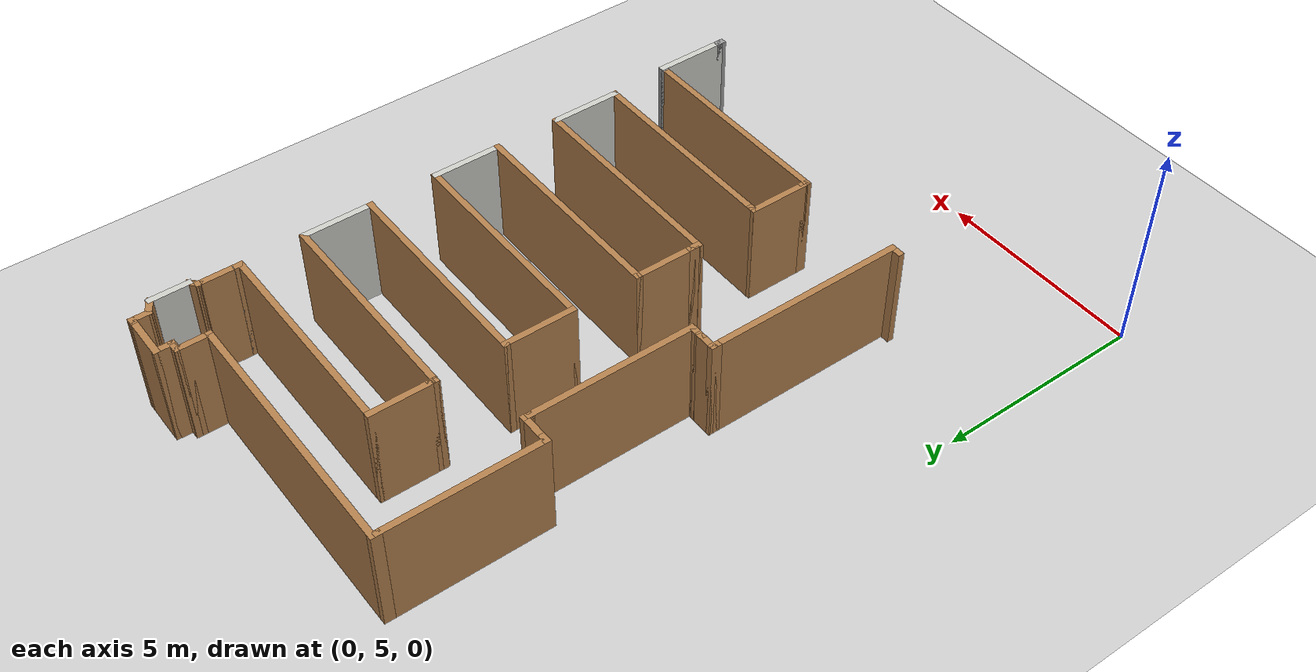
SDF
<sdf version="1.6">
 <world name="default">
  <model name="ground_plane">
   <static>1</static>
   <link name="link">
    <collision name="collision">
     <geometry><plane><normal>0 0 1</normal><size>100 100</size></plane></geometry>
     <surface>
      <contact><collide_bitmask>65535</collide_bitmask></contact>
      <friction><ode><mu>100</mu><mu2>50</mu2></ode></friction>
     </surface>
    </collision>
    <visual name="visual">
     <cast_shadows>0</cast_shadows>
     <geometry><plane><normal>0 0 1</normal><size>100 100</size></plane></geometry>
     <material>
      <script><uri>file://media/materials/scripts/gazebo.material</uri><name>Gazebo/Grey</name></script>
     </material>
    </visual>
   </link>
  </model>
  <model name="ecst_v3">
   <pose>3.45571 9.45141 0 0 0 -1.5708</pose>
   <link name="Wall_100">
    <collision name="Wall_100_Collision">
     <geometry><box><size>5 0.15 2.5</size></box></geometry>
     <pose>0 0 1.25 0 -0 0</pose>
    </collision>
    <visual name="Wall_100_Visual">
     <pose>0 0 1.25 0 -0 0</pose>
     <geometry><box><size>5 0.15 2.5</size></box></geometry>
     <material>
      <script><uri>file://media/materials/scripts/gazebo.material</uri><name>Gazebo/Wood</name></script>
      <ambient>1 1 1 1</ambient>
     </material>
     <meta><layer>0</layer></meta>
    </visual>
    <pose>-1.12064 4.85351 0 0 -0 -1.5708</pose>
   </link>
   <link name="Wall_101">
    <collision name="Wall_101_Collision">
     <geometry><box><size>0.25 0.15 2.5</size></box></geometry>
     <pose>0 0 1.25 0 -0 0</pose>
    </collision>
    <visual name="Wall_101_Visual">
     <pose>0 0 1.25 0 -0 0</pose>
     <geometry><box><size>0.25 0.15 2.5</size></box></geometry>
     <material>
      <script><uri>file://media/materials/scripts/gazebo.material</uri><name>Gazebo/Wood</name></script>
      <ambient>1 1 1 1</ambient>
     </material>
     <meta><layer>0</layer></meta>
    </visual>
    <pose>-1.12064 2.37851 0 0 -0 -1.5708</pose>
   </link>
   <link name="Wall_102">
    <collision name="Wall_102_Collision">
     <geometry><box><size>1.5 0.15 2.5</size></box></geometry>
     <pose>0 0 1.25 0 -0 0</pose>
    </collision>
    <visual name="Wall_102_Visual">
     <pose>0 0 1.25 0 -0 0</pose>
     <geometry><box><size>1.5 0.15 2.5</size></box></geometry>
     <material>
      <script><uri>file://media/materials/scripts/gazebo.material</uri><name>Gazebo/Wood</name></script>
      <ambient>1 1 1 1</ambient>
     </material>
     <meta><layer>0</layer></meta>
    </visual>
    <pose>-0.445642 2.32851 0 0 -0 0</pose>
   </link>
   <link name="Wall_103">
    <collision name="Wall_103_Collision">
     <geometry><box><size>0.25 0.15 2.5</size></box></geometry>
     <pose>0 0 1.25 0 -0 0</pose>
    </collision>
    <visual name="Wall_103_Visual">
     <pose>0 0 1.25 0 -0 0</pose>
     <geometry><box><size>0.25 0.15 2.5</size></box></geometry>
     <material>
      <script><uri>file://media/materials/scripts/gazebo.material</uri><name>Gazebo/Wood</name></script>
      <ambient>1 1 1 1</ambient>
     </material>
     <meta><layer>0</layer></meta>
    </visual>
    <pose>0.279358 2.32851 0 0 -0 0</pose>
   </link>
   <link name="Wall_104">
    <collision name="Wall_104_Collision">
     <geometry><box><size>5 0.15 2.5</size></box></geometry>
     <pose>0 0 1.25 0 -0 0</pose>
    </collision>
    <visual name="Wall_104_Visual">
     <pose>0 0 1.25 0 -0 0</pose>
     <geometry><box><size>5 0.15 2.5</size></box></geometry>
     <material>
      <script><uri>file://media/materials/scripts/gazebo.material</uri><name>Gazebo/Wood</name></script>
      <ambient>1 1 1 1</ambient>
     </material>
     <meta><layer>0</layer></meta>
    </visual>
    <pose>0.329358 4.75351 0 0 -0 1.5708</pose>
   </link>
   <link name="Wall_105">
    <collision name="Wall_105_Collision">
     <geometry><box><size>0.25 0.15 2.5</size></box></geometry>
     <pose>0 0 1.25 0 -0 0</pose>
    </collision>
    <visual name="Wall_105_Visual">
     <pose>0 0 1.25 0 -0 0</pose>
     <geometry><box><size>0.25 0.15 2.5</size></box></geometry>
     <material>
      <script><uri>file://media/materials/scripts/gazebo.material</uri><name>Gazebo/Grey</name></script>
      <ambient>1 1 1 1</ambient>
     </material>
     <meta><layer>0</layer></meta>
    </visual>
    <pose>0.329358 7.22851 0 0 -0 1.5708</pose>
   </link>
   <link name="Wall_106">
    <collision name="Wall_106_Collision">
     <geometry><box><size>0.25 0.15 2.5</size></box></geometry>
     <pose>0 0 1.25 0 -0 0</pose>
    </collision>
    <visual name="Wall_106_Visual">
     <pose>0 0 1.25 0 -0 0</pose>
     <geometry><box><size>0.25 0.15 2.5</size></box></geometry>
     <material>
      <script><uri>file://media/materials/scripts/gazebo.material</uri><name>Gazebo/Grey</name></script>
      <ambient>1 1 1 1</ambient>
     </material>
     <meta><layer>0</layer></meta>
    </visual>
    <pose>0.329358 7.32851 0 0 -0 1.5708</pose>
   </link>
   <link name="Wall_107">
    <collision name="Wall_107_Collision">
     <geometry><box><size>1.75 0.15 2.5</size></box></geometry>
     <pose>0 0 1.25 0 -0 0</pose>
    </collision>
    <visual name="Wall_107_Visual">
     <pose>0 0 1.25 0 -0 0</pose>
     <geometry><box><size>1.75 0.15 2.5</size></box></geometry>
     <material>
      <script><uri>file://media/materials/scripts/gazebo.material</uri><name>Gazebo/CeilingTiled</name></script>
      <ambient>1 1 1 1</ambient>
     </material>
     <meta><layer>0</layer></meta>
    </visual>
    <pose>1.12936 7.37851 0 0 -0 0</pose>
   </link>
   <link name="Wall_108">
    <collision name="Wall_108_Collision">
     <geometry><box><size>0.15 0.15 2.5</size></box></geometry>
     <pose>0 0 1.25 0 -0 0</pose>
    </collision>
    <visual name="Wall_108_Visual">
     <pose>0 0 1.25 0 -0 0</pose>
     <geometry><box><size>0.15 0.15 2.5</size></box></geometry>
     <material>
      <script><uri>file://media/materials/scripts/gazebo.material</uri><name>Gazebo/Grey</name></script>
      <ambient>1 1 1 1</ambient>
     </material>
     <meta><layer>0</layer></meta>
    </visual>
    <pose>1.92936 7.37851 0 0 -0 0</pose>
   </link>
   <link name="Wall_109">
    <collision name="Wall_109_Collision">
     <geometry><box><size>0.25 0.15 2.5</size></box></geometry>
     <pose>0 0 1.25 0 -0 0</pose>
    </collision>
    <visual name="Wall_109_Visual">
     <pose>0 0 1.25 0 -0 0</pose>
     <geometry><box><size>0.25 0.15 2.5</size></box></geometry>
     <material>
      <script><uri>file://media/materials/scripts/gazebo.material</uri><name>Gazebo/Grey</name></script>
      <ambient>1 1 1 1</ambient>
     </material>
     <meta><layer>0</layer></meta>
    </visual>
    <pose>1.97936 7.37851 0 0 -0 0</pose>
   </link>
   <link name="Wall_50">
    <collision name="Wall_50_Collision">
     <geometry><box><size>0.25 0.15 2.5</size></box></geometry>
     <pose>0 0 1.25 0 -0 0</pose>
    </collision>
    <visual name="Wall_50_Visual">
     <pose>0 0 1.25 0 -0 0</pose>
     <geometry><box><size>0.25 0.15 2.5</size></box></geometry>
     <material>
      <script><uri>file://media/materials/scripts/gazebo.material</uri><name>Gazebo/Wood</name></script>
      <ambient>1 1 1 1</ambient>
     </material>
     <meta><layer>0</layer></meta>
    </visual>
    <pose>0.412937 -0.433174 0 0 -0 1.5708</pose>
   </link>
   <link name="Wall_51">
    <collision name="Wall_51_Collision">
     <geometry><box><size>0.25 0.15 2.5</size></box></geometry>
     <pose>0 0 1.25 0 -0 0</pose>
    </collision>
    <visual name="Wall_51_Visual">
     <pose>0 0 1.25 0 -0 0</pose>
     <geometry><box><size>0.25 0.15 2.5</size></box></geometry>
     <material>
      <script><uri>file://media/materials/scripts/gazebo.material</uri><name>Gazebo/Wood</name></script>
      <ambient>1 1 1 1</ambient>
     </material>
     <meta><layer>0</layer></meta>
    </visual>
    <pose>0.412937 -0.333174 0 0 -0 1.5708</pose>
   </link>
   <link name="Wall_52">
    <collision name="Wall_52_Collision">
     <geometry><box><size>4.75 0.15 2.5</size></box></geometry>
     <pose>0 0 1.25 0 -0 0</pose>
    </collision>
    <visual name="Wall_52_Visual">
     <pose>0 0 1.25 0 -0 0</pose>
     <geometry><box><size>4.75 0.15 2.5</size></box></geometry>
     <material>
      <script><uri>file://media/materials/scripts/gazebo.material</uri><name>Gazebo/Wood</name></script>
      <ambient>1 1 1 1</ambient>
     </material>
     <meta><layer>0</layer></meta>
    </visual>
    <pose>-1.88706 -0.283174 0 0 -0 3.14159</pose>
   </link>
   <link name="Wall_53">
    <collision name="Wall_53_Collision">
     <geometry><box><size>0.15 0.15 2.5</size></box></geometry>
     <pose>0 0 1.25 0 -0 0</pose>
    </collision>
    <visual name="Wall_53_Visual">
     <pose>0 0 1.25 0 -0 0</pose>
     <geometry><box><size>0.15 0.15 2.5</size></box></geometry>
     <material>
      <script><uri>file://media/materials/scripts/gazebo.material</uri><name>Gazebo/Wood</name></script>
      <ambient>1 1 1 1</ambient>
     </material>
     <meta><layer>0</layer></meta>
    </visual>
    <pose>-4.18706 -0.283174 0 0 -0 0</pose>
   </link>
   <link name="Wall_54">
    <collision name="Wall_54_Collision">
     <geometry><box><size>0.25 0.15 2.5</size></box></geometry>
     <pose>0 0 1.25 0 -0 0</pose>
    </collision>
    <visual name="Wall_54_Visual">
     <pose>0 0 1.25 0 -0 0</pose>
     <geometry><box><size>0.25 0.15 2.5</size></box></geometry>
     <material>
      <script><uri>file://media/materials/scripts/gazebo.material</uri><name>Gazebo/Wood</name></script>
      <ambient>1 1 1 1</ambient>
     </material>
     <meta><layer>0</layer></meta>
    </visual>
    <pose>-4.23706 -0.283174 0 0 -0 3.14159</pose>
   </link>
   <link name="Wall_55">
    <collision name="Wall_55_Collision">
     <geometry><box><size>0.5 0.15 2.5</size></box></geometry>
     <pose>0 0 1.25 0 -0 0</pose>
    </collision>
    <visual name="Wall_55_Visual">
     <pose>0 0 1.25 0 -0 0</pose>
     <geometry><box><size>0.5 0.15 2.5</size></box></geometry>
     <material>
      <script><uri>file://media/materials/scripts/gazebo.material</uri><name>Gazebo/Wood</name></script>
      <ambient>1 1 1 1</ambient>
     </material>
     <meta><layer>0</layer></meta>
    </visual>
    <pose>-4.28706 -0.108173 0 0 -0 1.5708</pose>
   </link>
   <link name="Wall_56">
    <collision name="Wall_56_Collision">
     <geometry><box><size>0.25 0.15 2.5</size></box></geometry>
     <pose>0 0 1.25 0 -0 0</pose>
    </collision>
    <visual name="Wall_56_Visual">
     <pose>0 0 1.25 0 -0 0</pose>
     <geometry><box><size>0.25 0.15 2.5</size></box></geometry>
     <material>
      <script><uri>file://media/materials/scripts/gazebo.material</uri><name>Gazebo/Wood</name></script>
      <ambient>1 1 1 1</ambient>
     </material>
     <meta><layer>0</layer></meta>
    </visual>
    <pose>-4.28706 0.116827 0 0 -0 1.5708</pose>
   </link>
   <link name="Wall_57">
    <collision name="Wall_57_Collision">
     <geometry><box><size>0.25 0.15 2.5</size></box></geometry>
     <pose>0 0 1.25 0 -0 0</pose>
    </collision>
    <visual name="Wall_57_Visual">
     <pose>0 0 1.25 0 -0 0</pose>
     <geometry><box><size>0.25 0.15 2.5</size></box></geometry>
     <material>
      <script><uri>file://media/materials/scripts/gazebo.material</uri><name>Gazebo/Wood</name></script>
      <ambient>1 1 1 1</ambient>
     </material>
     <meta><layer>0</layer></meta>
    </visual>
    <pose>-4.28706 0.216826 0 0 -0 1.5708</pose>
   </link>
   <link name="Wall_58">
    <collision name="Wall_58_Collision">
     <geometry><box><size>0.25 0.15 2.5</size></box></geometry>
     <pose>0 0 1.25 0 -0 0</pose>
    </collision>
    <visual name="Wall_58_Visual">
     <pose>0 0 1.25 0 -0 0</pose>
     <geometry><box><size>0.25 0.15 2.5</size></box></geometry>
     <material>
      <script><uri>file://media/materials/scripts/gazebo.material</uri><name>Gazebo/Wood</name></script>
      <ambient>1 1 1 1</ambient>
     </material>
     <meta><layer>0</layer></meta>
    </visual>
    <pose>-4.28706 0.316826 0 0 -0 1.5708</pose>
   </link>
   <link name="Wall_59">
    <collision name="Wall_59_Collision">
     <geometry><box><size>4 0.15 2.5</size></box></geometry>
     <pose>0 0 1.25 0 -0 0</pose>
    </collision>
    <visual name="Wall_59_Visual">
     <pose>0 0 1.25 0 -0 0</pose>
     <geometry><box><size>4 0.15 2.5</size></box></geometry>
     <material>
      <script><uri>file://media/materials/scripts/gazebo.material</uri><name>Gazebo/Wood</name></script>
      <ambient>1 1 1 1</ambient>
     </material>
     <meta><layer>0</layer></meta>
    </visual>
    <pose>-6.21206 0.366827 0 0 -0 3.14159</pose>
   </link>
   <link name="Wall_60">
    <collision name="Wall_60_Collision">
     <geometry><box><size>0.15 0.15 2.5</size></box></geometry>
     <pose>0 0 1.25 0 -0 0</pose>
    </collision>
    <visual name="Wall_60_Visual">
     <pose>0 0 1.25 0 -0 0</pose>
     <geometry><box><size>0.15 0.15 2.5</size></box></geometry>
     <material>
      <script><uri>file://media/materials/scripts/gazebo.material</uri><name>Gazebo/Wood</name></script>
      <ambient>1 1 1 1</ambient>
     </material>
     <meta><layer>0</layer></meta>
    </visual>
    <pose>-8.13706 0.366827 0 0 -0 0</pose>
   </link>
   <link name="Wall_61">
    <collision name="Wall_61_Collision">
     <geometry><box><size>0.25 0.15 2.5</size></box></geometry>
     <pose>0 0 1.25 0 -0 0</pose>
    </collision>
    <visual name="Wall_61_Visual">
     <pose>0 0 1.25 0 -0 0</pose>
     <geometry><box><size>0.25 0.15 2.5</size></box></geometry>
     <material>
      <script><uri>file://media/materials/scripts/gazebo.material</uri><name>Gazebo/Wood</name></script>
      <ambient>1 1 1 1</ambient>
     </material>
     <meta><layer>0</layer></meta>
    </visual>
    <pose>-8.18706 0.366827 0 0 -0 3.14159</pose>
   </link>
   <link name="Wall_62">
    <collision name="Wall_62_Collision">
     <geometry><box><size>0.75 0.15 2.5</size></box></geometry>
     <pose>0 0 1.25 0 -0 0</pose>
    </collision>
    <visual name="Wall_62_Visual">
     <pose>0 0 1.25 0 -0 0</pose>
     <geometry><box><size>0.75 0.15 2.5</size></box></geometry>
     <material>
      <script><uri>file://media/materials/scripts/gazebo.material</uri><name>Gazebo/Wood</name></script>
      <ambient>1 1 1 1</ambient>
     </material>
     <meta><layer>0</layer></meta>
    </visual>
    <pose>-8.23706 0.066826 0 0 -0 -1.5708</pose>
   </link>
   <link name="Wall_63">
    <collision name="Wall_63_Collision">
     <geometry><box><size>0.25 0.15 2.5</size></box></geometry>
     <pose>0 0 1.25 0 -0 0</pose>
    </collision>
    <visual name="Wall_63_Visual">
     <pose>0 0 1.25 0 -0 0</pose>
     <geometry><box><size>0.25 0.15 2.5</size></box></geometry>
     <material>
      <script><uri>file://media/materials/scripts/gazebo.material</uri><name>Gazebo/Wood</name></script>
      <ambient>1 1 1 1</ambient>
     </material>
     <meta><layer>0</layer></meta>
    </visual>
    <pose>-8.23706 -0.283174 0 0 -0 -1.5708</pose>
   </link>
   <link name="Wall_64">
    <collision name="Wall_64_Collision">
     <geometry><box><size>3.75 0.15 2.5</size></box></geometry>
     <pose>0 0 1.25 0 -0 0</pose>
    </collision>
    <visual name="Wall_64_Visual">
     <pose>0 0 1.25 0 -0 0</pose>
     <geometry><box><size>3.75 0.15 2.5</size></box></geometry>
     <material>
      <script><uri>file://media/materials/scripts/gazebo.material</uri><name>Gazebo/Wood</name></script>
      <ambient>1 1 1 1</ambient>
     </material>
     <meta><layer>0</layer></meta>
    </visual>
    <pose>-10.0371 -0.333174 0 0 -0 3.14159</pose>
   </link>
   <link name="Wall_65">
    <collision name="Wall_65_Collision">
     <geometry><box><size>0.25 0.15 2.5</size></box></geometry>
     <pose>0 0 1.25 0 -0 0</pose>
    </collision>
    <visual name="Wall_65_Visual">
     <pose>0 0 1.25 0 -0 0</pose>
     <geometry><box><size>0.25 0.15 2.5</size></box></geometry>
     <material>
      <script><uri>file://media/materials/scripts/gazebo.material</uri><name>Gazebo/Wood</name></script>
      <ambient>1 1 1 1</ambient>
     </material>
     <meta><layer>0</layer></meta>
    </visual>
    <pose>-11.8871 -0.333174 0 0 -0 3.14159</pose>
   </link>
   <link name="Wall_66">
    <collision name="Wall_66_Collision">
     <geometry><box><size>6.25 0.15 2.5</size></box></geometry>
     <pose>0 0 1.25 0 -0 0</pose>
    </collision>
    <visual name="Wall_66_Visual">
     <pose>0 0 1.25 0 -0 0</pose>
     <geometry><box><size>6.25 0.15 2.5</size></box></geometry>
     <material>
      <script><uri>file://media/materials/scripts/gazebo.material</uri><name>Gazebo/Wood</name></script>
      <ambient>1 1 1 1</ambient>
     </material>
     <meta><layer>0</layer></meta>
    </visual>
    <pose>-11.9371 2.71683 0 0 -0 1.5708</pose>
   </link>
   <link name="Wall_67">
    <collision name="Wall_67_Collision">
     <geometry><box><size>0.25 0.15 2.5</size></box></geometry>
     <pose>0 0 1.25 0 -0 0</pose>
    </collision>
    <visual name="Wall_67_Visual">
     <pose>0 0 1.25 0 -0 0</pose>
     <geometry><box><size>0.25 0.15 2.5</size></box></geometry>
     <material>
      <script><uri>file://media/materials/scripts/gazebo.material</uri><name>Gazebo/Wood</name></script>
      <ambient>1 1 1 1</ambient>
     </material>
     <meta><layer>0</layer></meta>
    </visual>
    <pose>-11.9371 5.81683 0 0 -0 1.5708</pose>
   </link>
   <link name="Wall_68">
    <collision name="Wall_68_Collision">
     <geometry><box><size>0.75 0.15 2.5</size></box></geometry>
     <pose>0 0 1.25 0 -0 0</pose>
    </collision>
    <visual name="Wall_68_Visual">
     <pose>0 0 1.25 0 -0 0</pose>
     <geometry><box><size>0.75 0.15 2.5</size></box></geometry>
     <material>
      <script><uri>file://media/materials/scripts/gazebo.material</uri><name>Gazebo/Wood</name></script>
      <ambient>1 1 1 1</ambient>
     </material>
     <meta><layer>0</layer></meta>
    </visual>
    <pose>-12.2371 5.86683 0 0 -0 3.14159</pose>
   </link>
   <link name="Wall_69">
    <collision name="Wall_69_Collision">
     <geometry><box><size>0.25 0.15 2.5</size></box></geometry>
     <pose>0 0 1.25 0 -0 0</pose>
    </collision>
    <visual name="Wall_69_Visual">
     <pose>0 0 1.25 0 -0 0</pose>
     <geometry><box><size>0.25 0.15 2.5</size></box></geometry>
     <material>
      <script><uri>file://media/materials/scripts/gazebo.material</uri><name>Gazebo/Wood</name></script>
      <ambient>1 1 1 1</ambient>
     </material>
     <meta><layer>0</layer></meta>
    </visual>
    <pose>-12.5871 5.86683 0 0 -0 3.14159</pose>
   </link>
   <link name="Wall_70">
    <collision name="Wall_70_Collision">
     <geometry><box><size>0.25 0.15 2.5</size></box></geometry>
     <pose>0 0 1.25 0 -0 0</pose>
    </collision>
    <visual name="Wall_70_Visual">
     <pose>0 0 1.25 0 -0 0</pose>
     <geometry><box><size>0.25 0.15 2.5</size></box></geometry>
     <material>
      <script><uri>file://media/materials/scripts/gazebo.material</uri><name>Gazebo/Wood</name></script>
      <ambient>1 1 1 1</ambient>
     </material>
     <meta><layer>0</layer></meta>
    </visual>
    <pose>-12.6371 5.91683 0 0 -0 1.5708</pose>
   </link>
   <link name="Wall_71">
    <collision name="Wall_71_Collision">
     <geometry><box><size>0.25 0.15 2.5</size></box></geometry>
     <pose>0 0 1.25 0 -0 0</pose>
    </collision>
    <visual name="Wall_71_Visual">
     <pose>0 0 1.25 0 -0 0</pose>
     <geometry><box><size>0.25 0.15 2.5</size></box></geometry>
     <material>
      <script><uri>file://media/materials/scripts/gazebo.material</uri><name>Gazebo/Wood</name></script>
      <ambient>1 1 1 1</ambient>
     </material>
     <meta><layer>0</layer></meta>
    </visual>
    <pose>-12.6371 6.01683 0 0 -0 1.5708</pose>
   </link>
   <link name="Wall_72">
    <collision name="Wall_72_Collision">
     <geometry><box><size>0.5 0.15 2.5</size></box></geometry>
     <pose>0 0 1.25 0 -0 0</pose>
    </collision>
    <visual name="Wall_72_Visual">
     <pose>0 0 1.25 0 -0 0</pose>
     <geometry><box><size>0.5 0.15 2.5</size></box></geometry>
     <material>
      <script><uri>file://media/materials/scripts/gazebo.material</uri><name>Gazebo/Wood</name></script>
      <ambient>1 1 1 1</ambient>
     </material>
     <meta><layer>0</layer></meta>
    </visual>
    <pose>-12.8121 6.06683 0 0 -0 3.14159</pose>
   </link>
   <link name="Wall_73">
    <collision name="Wall_73_Collision">
     <geometry><box><size>1 0.15 2.5</size></box></geometry>
     <pose>0 0 1.25 0 -0 0</pose>
    </collision>
    <visual name="Wall_73_Visual">
     <pose>0 0 1.25 0 -0 0</pose>
     <geometry><box><size>1 0.15 2.5</size></box></geometry>
     <material>
      <script><uri>file://media/materials/scripts/gazebo.material</uri><name>Gazebo/Wood</name></script>
      <ambient>1 1 1 1</ambient>
     </material>
     <meta><layer>0</layer></meta>
    </visual>
    <pose>-12.9871 6.49183 0 0 -0 1.5708</pose>
   </link>
   <link name="Wall_74">
    <collision name="Wall_74_Collision">
     <geometry><box><size>0.25 0.15 2.5</size></box></geometry>
     <pose>0 0 1.25 0 -0 0</pose>
    </collision>
    <visual name="Wall_74_Visual">
     <pose>0 0 1.25 0 -0 0</pose>
     <geometry><box><size>0.25 0.15 2.5</size></box></geometry>
     <material>
      <script><uri>file://media/materials/scripts/gazebo.material</uri><name>Gazebo/Wood</name></script>
      <ambient>1 1 1 1</ambient>
     </material>
     <meta><layer>0</layer></meta>
    </visual>
    <pose>-12.9871 6.96683 0 0 -0 1.5708</pose>
   </link>
   <link name="Wall_75">
    <collision name="Wall_75_Collision">
     <geometry><box><size>0.25 0.15 2.5</size></box></geometry>
     <pose>0 0 1.25 0 -0 0</pose>
    </collision>
    <visual name="Wall_75_Visual">
     <pose>0 0 1.25 0 -0 0</pose>
     <geometry><box><size>0.25 0.15 2.5</size></box></geometry>
     <material>
      <script><uri>file://media/materials/scripts/gazebo.material</uri><name>Gazebo/Wood</name></script>
      <ambient>1 1 1 1</ambient>
     </material>
     <meta><layer>0</layer></meta>
    </visual>
    <pose>-12.9871 7.06683 0 0 -0 1.5708</pose>
   </link>
   <link name="Wall_76">
    <collision name="Wall_76_Collision">
     <geometry><box><size>0.5 0.15 2.5</size></box></geometry>
     <pose>0 0 1.25 0 -0 0</pose>
    </collision>
    <visual name="Wall_76_Visual">
     <pose>0 0 1.25 0 -0 0</pose>
     <geometry><box><size>0.5 0.15 2.5</size></box></geometry>
     <material>
      <script><uri>file://media/materials/scripts/gazebo.material</uri><name>Gazebo/Wood</name></script>
      <ambient>1 1 1 1</ambient>
     </material>
     <meta><layer>0</layer></meta>
    </visual>
    <pose>-12.8121 7.11683 0 0 -0 0</pose>
   </link>
   <link name="Wall_77">
    <collision name="Wall_77_Collision">
     <geometry><box><size>0.5 0.15 2.5</size></box></geometry>
     <pose>0 0 1.25 0 -0 0</pose>
    </collision>
    <visual name="Wall_77_Visual">
     <pose>0 0 1.25 0 -0 0</pose>
     <geometry><box><size>0.5 0.15 2.5</size></box></geometry>
     <material>
      <script><uri>file://media/materials/scripts/gazebo.material</uri><name>Gazebo/Wood</name></script>
      <ambient>1 1 1 1</ambient>
     </material>
     <meta><layer>0</layer></meta>
    </visual>
    <pose>-12.5496 7.26838 0 0 -0 1.0472</pose>
   </link>
   <link name="Wall_78">
    <collision name="Wall_78_Collision">
     <geometry><box><size>1 0.15 2.5</size></box></geometry>
     <pose>0 0 1.25 0 -0 0</pose>
    </collision>
    <visual name="Wall_78_Visual">
     <pose>0 0 1.25 0 -0 0</pose>
     <geometry><box><size>1 0.15 2.5</size></box></geometry>
     <material>
      <script><uri>file://media/materials/scripts/gazebo.material</uri><name>Gazebo/CeilingTiled</name></script>
      <ambient>1 1 1 1</ambient>
     </material>
     <meta><layer>0</layer></meta>
    </visual>
    <pose>-12.0371 7.41993 0 0 -0 0</pose>
   </link>
   <link name="Wall_79">
    <collision name="Wall_79_Collision">
     <geometry><box><size>0.25 0.15 2.5</size></box></geometry>
     <pose>0 0 1.25 0 -0 0</pose>
    </collision>
    <visual name="Wall_79_Visual">
     <pose>0 0 1.25 0 -0 0</pose>
     <geometry><box><size>0.25 0.15 2.5</size></box></geometry>
     <material>
      <script><uri>file://media/materials/scripts/gazebo.material</uri><name>Gazebo/Wood</name></script>
      <ambient>1 1 1 1</ambient>
     </material>
     <meta><layer>0</layer></meta>
    </visual>
    <pose>-11.5767 7.38458 0 0 -0 -0.785398</pose>
   </link>
   <link name="Wall_80">
    <collision name="Wall_80_Collision">
     <geometry><box><size>0.25 0.15 2.5</size></box></geometry>
     <pose>0 0 1.25 0 -0 0</pose>
    </collision>
    <visual name="Wall_80_Visual">
     <pose>0 0 1.25 0 -0 0</pose>
     <geometry><box><size>0.25 0.15 2.5</size></box></geometry>
     <material>
      <script><uri>file://media/materials/scripts/gazebo.material</uri><name>Gazebo/Wood</name></script>
      <ambient>1 1 1 1</ambient>
     </material>
     <meta><layer>0</layer></meta>
    </visual>
    <pose>-11.506 7.31387 0 0 -0 -0.785398</pose>
   </link>
   <link name="Wall_81">
    <collision name="Wall_81_Collision">
     <geometry><box><size>1 0.15 2.5</size></box></geometry>
     <pose>0 0 1.25 0 -0 0</pose>
    </collision>
    <visual name="Wall_81_Visual">
     <pose>0 0 1.25 0 -0 0</pose>
     <geometry><box><size>1 0.15 2.5</size></box></geometry>
     <material>
      <script><uri>file://media/materials/scripts/gazebo.material</uri><name>Gazebo/Wood</name></script>
      <ambient>1 1 1 1</ambient>
     </material>
     <meta><layer>0</layer></meta>
    </visual>
    <pose>-11.0456 7.27851 0 0 -0 0</pose>
   </link>
   <link name="Wall_82">
    <collision name="Wall_82_Collision">
     <geometry><box><size>0.15 0.15 2.5</size></box></geometry>
     <pose>0 0 1.25 0 -0 0</pose>
    </collision>
    <visual name="Wall_82_Visual">
     <pose>0 0 1.25 0 -0 0</pose>
     <geometry><box><size>0.15 0.15 2.5</size></box></geometry>
     <material>
      <script><uri>file://media/materials/scripts/gazebo.material</uri><name>Gazebo/Grey</name></script>
      <ambient>1 1 1 1</ambient>
     </material>
     <meta><layer>0</layer></meta>
    </visual>
    <pose>-10.6206 7.27851 0 0 -0 0</pose>
   </link>
   <link name="Wall_83">
    <collision name="Wall_83_Collision">
     <geometry><box><size>0.25 0.15 2.5</size></box></geometry>
     <pose>0 0 1.25 0 -0 0</pose>
    </collision>
    <visual name="Wall_83_Visual">
     <pose>0 0 1.25 0 -0 0</pose>
     <geometry><box><size>0.25 0.15 2.5</size></box></geometry>
     <material>
      <script><uri>file://media/materials/scripts/gazebo.material</uri><name>Gazebo/Wood</name></script>
      <ambient>1 1 1 1</ambient>
     </material>
     <meta><layer>0</layer></meta>
    </visual>
    <pose>-10.5706 7.27851 0 0 -0 0</pose>
   </link>
   <link name="Wall_84">
    <collision name="Wall_84_Collision">
     <geometry><box><size>5.25 0.15 2.5</size></box></geometry>
     <pose>0 0 1.25 0 -0 0</pose>
    </collision>
    <visual name="Wall_84_Visual">
     <pose>0 0 1.25 0 -0 0</pose>
     <geometry><box><size>5.25 0.15 2.5</size></box></geometry>
     <material>
      <script><uri>file://media/materials/scripts/gazebo.material</uri><name>Gazebo/Wood</name></script>
      <ambient>1 1 1 1</ambient>
     </material>
     <meta><layer>0</layer></meta>
    </visual>
    <pose>-10.5206 4.72851 0 0 -0 -1.5708</pose>
   </link>
   <link name="Wall_85">
    <collision name="Wall_85_Collision">
     <geometry><box><size>1.5 0.15 2.5</size></box></geometry>
     <pose>0 0 1.25 0 -0 0</pose>
    </collision>
    <visual name="Wall_85_Visual">
     <pose>0 0 1.25 0 -0 0</pose>
     <geometry><box><size>1.5 0.15 2.5</size></box></geometry>
     <material>
      <script><uri>file://media/materials/scripts/gazebo.material</uri><name>Gazebo/Wood</name></script>
      <ambient>1 1 1 1</ambient>
     </material>
     <meta><layer>0</layer></meta>
    </visual>
    <pose>-9.84564 2.17851 0 0 -0 0</pose>
   </link>
   <link name="Wall_86">
    <collision name="Wall_86_Collision">
     <geometry><box><size>0.25 0.15 2.5</size></box></geometry>
     <pose>0 0 1.25 0 -0 0</pose>
    </collision>
    <visual name="Wall_86_Visual">
     <pose>0 0 1.25 0 -0 0</pose>
     <geometry><box><size>0.25 0.15 2.5</size></box></geometry>
     <material>
      <script><uri>file://media/materials/scripts/gazebo.material</uri><name>Gazebo/Wood</name></script>
      <ambient>1 1 1 1</ambient>
     </material>
     <meta><layer>0</layer></meta>
    </visual>
    <pose>-9.12064 2.17851 0 0 -0 0</pose>
   </link>
   <link name="Wall_87">
    <collision name="Wall_87_Collision">
     <geometry><box><size>5.25 0.15 2.5</size></box></geometry>
     <pose>0 0 1.25 0 -0 0</pose>
    </collision>
    <visual name="Wall_87_Visual">
     <pose>0 0 1.25 0 -0 0</pose>
     <geometry><box><size>5.25 0.15 2.5</size></box></geometry>
     <material>
      <script><uri>file://media/materials/scripts/gazebo.material</uri><name>Gazebo/Wood</name></script>
      <ambient>1 1 1 1</ambient>
     </material>
     <meta><layer>0</layer></meta>
    </visual>
    <pose>-9.07064 4.72851 0 0 -0 1.5708</pose>
   </link>
   <link name="Wall_88">
    <collision name="Wall_88_Collision">
     <geometry><box><size>1.75 0.15 2.5</size></box></geometry>
     <pose>0 0 1.25 0 -0 0</pose>
    </collision>
    <visual name="Wall_88_Visual">
     <pose>0 0 1.25 0 -0 0</pose>
     <geometry><box><size>1.75 0.15 2.5</size></box></geometry>
     <material>
      <script><uri>file://media/materials/scripts/gazebo.material</uri><name>Gazebo/CeilingTiled</name></script>
      <ambient>1 1 1 1</ambient>
     </material>
     <meta><layer>0</layer></meta>
    </visual>
    <pose>-8.27064 7.27851 0 0 -0 0</pose>
   </link>
   <link name="Wall_89">
    <collision name="Wall_89_Collision">
     <geometry><box><size>5.25 0.15 2.5</size></box></geometry>
     <pose>0 0 1.25 0 -0 0</pose>
    </collision>
    <visual name="Wall_89_Visual">
     <pose>0 0 1.25 0 -0 0</pose>
     <geometry><box><size>5.25 0.15 2.5</size></box></geometry>
     <material>
      <script><uri>file://media/materials/scripts/gazebo.material</uri><name>Gazebo/Wood</name></script>
      <ambient>1 1 1 1</ambient>
     </material>
     <meta><layer>0</layer></meta>
    </visual>
    <pose>-7.47064 4.72851 0 0 -0 -1.5708</pose>
   </link>
   <link name="Wall_90">
    <collision name="Wall_90_Collision">
     <geometry><box><size>1.75 0.15 2.5</size></box></geometry>
     <pose>0 0 1.25 0 -0 0</pose>
    </collision>
    <visual name="Wall_90_Visual">
     <pose>0 0 1.25 0 -0 0</pose>
     <geometry><box><size>1.75 0.15 2.5</size></box></geometry>
     <material>
      <script><uri>file://media/materials/scripts/gazebo.material</uri><name>Gazebo/Wood</name></script>
      <ambient>1 1 1 1</ambient>
     </material>
     <meta><layer>0</layer></meta>
    </visual>
    <pose>-6.67064 2.17851 0 0 -0 0</pose>
   </link>
   <link name="Wall_91">
    <collision name="Wall_91_Collision">
     <geometry><box><size>5.25 0.15 2.5</size></box></geometry>
     <pose>0 0 1.25 0 -0 0</pose>
    </collision>
    <visual name="Wall_91_Visual">
     <pose>0 0 1.25 0 -0 0</pose>
     <geometry><box><size>5.25 0.15 2.5</size></box></geometry>
     <material>
      <script><uri>file://media/materials/scripts/gazebo.material</uri><name>Gazebo/Wood</name></script>
      <ambient>1 1 1 1</ambient>
     </material>
     <meta><layer>0</layer></meta>
    </visual>
    <pose>-5.87064 4.72851 0 0 -0 1.5708</pose>
   </link>
   <link name="Wall_92">
    <collision name="Wall_92_Collision">
     <geometry><box><size>1.75 0.15 2.5</size></box></geometry>
     <pose>0 0 1.25 0 -0 0</pose>
    </collision>
    <visual name="Wall_92_Visual">
     <pose>0 0 1.25 0 -0 0</pose>
     <geometry><box><size>1.75 0.15 2.5</size></box></geometry>
     <material>
      <script><uri>file://media/materials/scripts/gazebo.material</uri><name>Gazebo/CeilingTiled</name></script>
      <ambient>1 1 1 1</ambient>
     </material>
     <meta><layer>0</layer></meta>
    </visual>
    <pose>-5.07064 7.27851 0 0 -0 0</pose>
   </link>
   <link name="Wall_93">
    <collision name="Wall_93_Collision">
     <geometry><box><size>5.25 0.15 2.5</size></box></geometry>
     <pose>0 0 1.25 0 -0 0</pose>
    </collision>
    <visual name="Wall_93_Visual">
     <pose>0 0 1.25 0 -0 0</pose>
     <geometry><box><size>5.25 0.15 2.5</size></box></geometry>
     <material>
      <script><uri>file://media/materials/scripts/gazebo.material</uri><name>Gazebo/Wood</name></script>
      <ambient>1 1 1 1</ambient>
     </material>
     <meta><layer>0</layer></meta>
    </visual>
    <pose>-4.27064 4.72851 0 0 -0 -1.5708</pose>
   </link>
   <link name="Wall_94">
    <collision name="Wall_94_Collision">
     <geometry><box><size>1.5 0.15 2.5</size></box></geometry>
     <pose>0 0 1.25 0 -0 0</pose>
    </collision>
    <visual name="Wall_94_Visual">
     <pose>0 0 1.25 0 -0 0</pose>
     <geometry><box><size>1.5 0.15 2.5</size></box></geometry>
     <material>
      <script><uri>file://media/materials/scripts/gazebo.material</uri><name>Gazebo/Wood</name></script>
      <ambient>1 1 1 1</ambient>
     </material>
     <meta><layer>0</layer></meta>
    </visual>
    <pose>-3.59564 2.17851 0 0 -0 0</pose>
   </link>
   <link name="Wall_95">
    <collision name="Wall_95_Collision">
     <geometry><box><size>0.25 0.15 2.5</size></box></geometry>
     <pose>0 0 1.25 0 -0 0</pose>
    </collision>
    <visual name="Wall_95_Visual">
     <pose>0 0 1.25 0 -0 0</pose>
     <geometry><box><size>0.25 0.15 2.5</size></box></geometry>
     <material>
      <script><uri>file://media/materials/scripts/gazebo.material</uri><name>Gazebo/Wood</name></script>
      <ambient>1 1 1 1</ambient>
     </material>
     <meta><layer>0</layer></meta>
    </visual>
    <pose>-2.87064 2.17851 0 0 -0 0</pose>
   </link>
   <link name="Wall_96">
    <collision name="Wall_96_Collision">
     <geometry><box><size>0.15 0.15 2.5</size></box></geometry>
     <pose>0 0 1.25 0 -0 0</pose>
    </collision>
    <visual name="Wall_96_Visual">
     <pose>0 0 1.25 0 -0 0</pose>
     <geometry><box><size>0.15 0.15 2.5</size></box></geometry>
     <material>
      <script><uri>file://media/materials/scripts/gazebo.material</uri><name>Gazebo/Wood</name></script>
      <ambient>1 1 1 1</ambient>
     </material>
     <meta><layer>0</layer></meta>
    </visual>
    <pose>-2.82064 2.17851 0 0 -0 0</pose>
   </link>
   <link name="Wall_97">
    <collision name="Wall_97_Collision">
     <geometry><box><size>0.25 0.15 2.5</size></box></geometry>
     <pose>0 0 1.25 0 -0 0</pose>
    </collision>
    <visual name="Wall_97_Visual">
     <pose>0 0 1.25 0 -0 0</pose>
     <geometry><box><size>0.25 0.15 2.5</size></box></geometry>
     <material>
      <script><uri>file://media/materials/scripts/gazebo.material</uri><name>Gazebo/Wood</name></script>
      <ambient>1 1 1 1</ambient>
     </material>
     <meta><layer>0</layer></meta>
    </visual>
    <pose>-2.77064 2.17851 0 0 -0 0</pose>
   </link>
   <link name="Wall_98">
    <collision name="Wall_98_Collision">
     <geometry><box><size>5.25 0.15 2.5</size></box></geometry>
     <pose>0 0 1.25 0 -0 0</pose>
    </collision>
    <visual name="Wall_98_Visual">
     <pose>0 0 1.25 0 -0 0</pose>
     <geometry><box><size>5.25 0.15 2.5</size></box></geometry>
     <material>
      <script><uri>file://media/materials/scripts/gazebo.material</uri><name>Gazebo/Wood</name></script>
      <ambient>1 1 1 1</ambient>
     </material>
     <meta><layer>0</layer></meta>
    </visual>
    <pose>-2.72064 4.72851 0 0 -0 1.5708</pose>
   </link>
   <link name="Wall_99">
    <collision name="Wall_99_Collision">
     <geometry><box><size>1.75 0.15 2.5</size></box></geometry>
     <pose>0 0 1.25 0 -0 0</pose>
    </collision>
    <visual name="Wall_99_Visual">
     <pose>0 0 1.25 0 -0 0</pose>
     <geometry><box><size>1.75 0.15 2.5</size></box></geometry>
     <material>
      <script><uri>file://media/materials/scripts/gazebo.material</uri><name>Gazebo/CeilingTiled</name></script>
      <ambient>1 1 1 1</ambient>
     </material>
     <meta><layer>0</layer></meta>
    </visual>
    <pose>-1.92064 7.27851 0 0 -0 0</pose>
   </link>
   <static>1</static>
  </model>
 </world>
</sdf>
